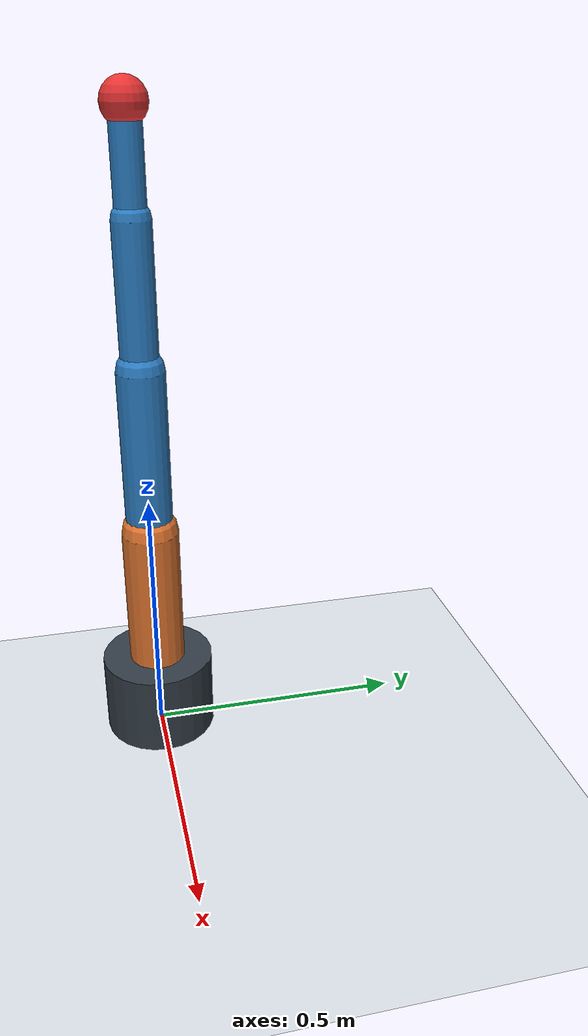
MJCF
<mujoco model="robot_arm_mujoco_sim">
  <compiler angle="radian" autolimits="true"/>
  <option timestep="0.002" gravity="0 0 -9.81" integrator="RK4"/>

  <visual>
    <headlight diffuse="0.9 0.9 0.9" ambient="0.35 0.35 0.35" specular="0.1 0.1 0.1"/>
    <rgba haze="0.15 0.2 0.25 1"/>
  </visual>

  <asset>
    <texture name="skybox" type="skybox" builtin="gradient" rgb1="0.18 0.26 0.36" rgb2="0.95 0.98 1.0" width="512" height="3072"/>
    <material name="ground" rgba="0.87 0.9 0.92 1"/>
    <material name="base_mat" rgba="0.2 0.24 0.28 1"/>
    <material name="link_mat" rgba="0.18 0.51 0.79 1"/>
    <material name="joint_mat" rgba="0.9 0.47 0.19 1"/>
    <material name="tool_mat" rgba="0.9 0.2 0.2 1"/>
  </asset>

  <default>
    <default class="visual_geom">
      <geom type="capsule" density="300" contype="1" conaffinity="1" friction="0.8 0.02 0.01"/>
    </default>
    <joint damping="2.5" armature="0.03" limited="true"/>
    <position kp="160" forcerange="-80 80"/>
  </default>

  <worldbody>
    <light name="sun" pos="1.2 -1.5 2.4" dir="-0.2 0.25 -1" directional="true"/>
    <geom name="floor" type="plane" material="ground" size="2.5 2.5 0.1"/>
    <body name="base_link" pos="0 0 0.08">
      <geom name="base" type="cylinder" size="0.11 0.08" material="base_mat" density="600"/>
      <body name="shoulder_yaw_link" pos="0 0 0.08">
        <joint name="shoulder_yaw" type="hinge" axis="0 0 1" range="-3.14159 3.14159"/>
        <geom name="column" type="capsule" fromto="0 0 0 0 0 0.28" size="0.055" material="joint_mat"/>
        <body name="upper_arm_link" pos="0 0 0.28">
          <joint name="shoulder_pitch" type="hinge" axis="0 1 0" range="-1.8 1.8"/>
          <geom name="upper_arm" class="visual_geom" fromto="0 0 0 0 0 0.32" size="0.045" material="link_mat"/>
          <body name="forearm_link" pos="0 0 0.32">
            <joint name="elbow_pitch" type="hinge" axis="0 1 0" range="-2.2 2.2"/>
            <geom name="forearm" class="visual_geom" fromto="0 0 0 0 0 0.26" size="0.035" material="link_mat"/>
            <body name="wrist_link" pos="0 0 0.26">
              <joint name="wrist_pitch" type="hinge" axis="0 1 0" range="-1.8 1.8"/>
              <geom name="wrist" class="visual_geom" fromto="0 0 0 0 0 0.18" size="0.028" material="link_mat"/>
              <body name="tool0" pos="0 0 0.18">
                <geom name="tool" type="sphere" size="0.04" material="tool_mat" density="200"/>
                <site name="ee_site" type="sphere" pos="0 0 0" size="0.02" rgba="1 0.95 0.1 1"/>
              </body>
            </body>
          </body>
        </body>
      </body>
    </body>
  </worldbody>

  <actuator>
    <position name="shoulder_yaw_servo" joint="shoulder_yaw" ctrlrange="-3.14159 3.14159"/>
    <position name="shoulder_pitch_servo" joint="shoulder_pitch" ctrlrange="-1.8 1.8"/>
    <position name="elbow_pitch_servo" joint="elbow_pitch" ctrlrange="-2.2 2.2"/>
    <position name="wrist_pitch_servo" joint="wrist_pitch" ctrlrange="-1.8 1.8"/>
  </actuator>

  <keyframe>
    <key name="home" qpos="0.0 0.45 -0.95 0.6"/>
  </keyframe>
</mujoco>
